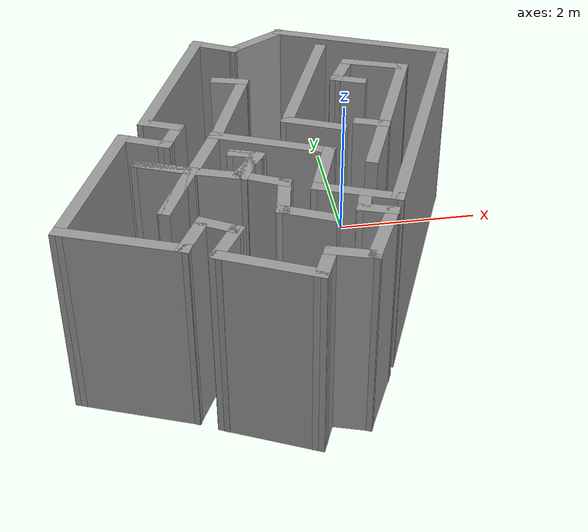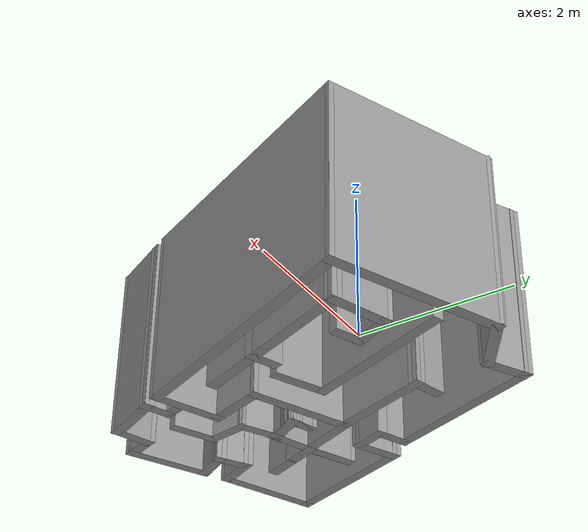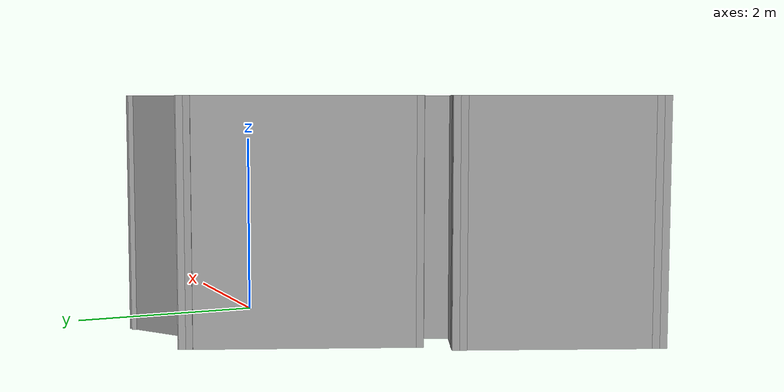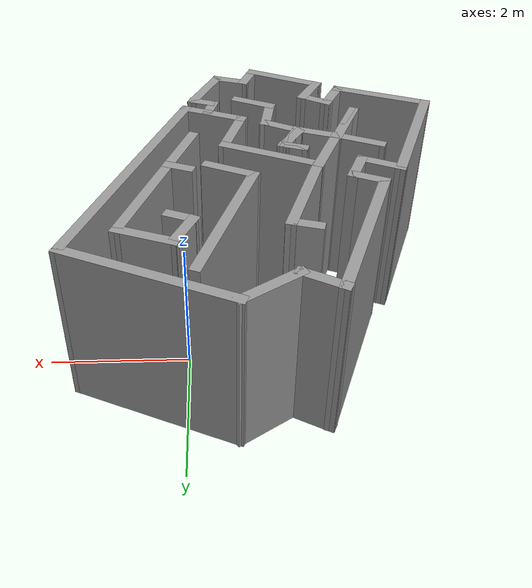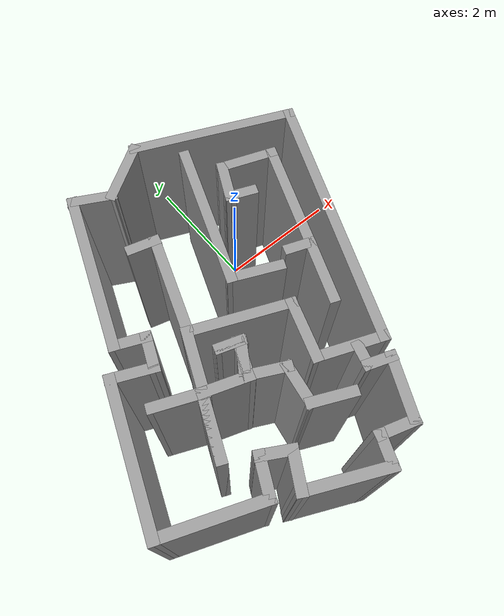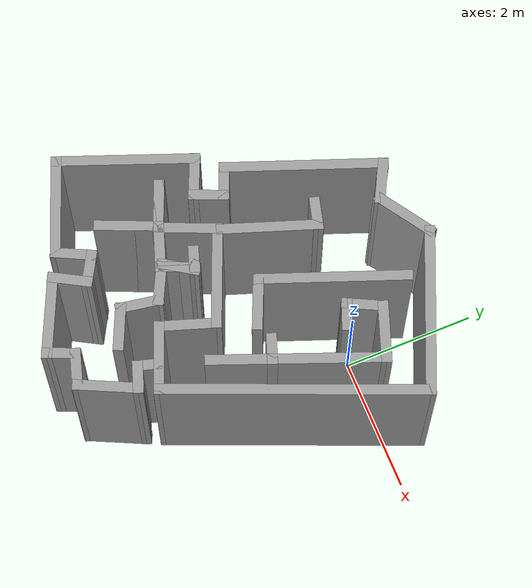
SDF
<?xml version='1.0'?>
<sdf version='1.7'>
  <model name='Arena_ws22_V1'>
    <pose>-1.10906 -1.36389 0 0 -0 0</pose>
    <link name='Wall_1'>
      <collision name='Wall_1_Collision'>
        <geometry>
          <box>
            <size>3.90656 0.15 2.5</size>
          </box>
        </geometry>
        <pose>0 0 1.25 0 -0 0</pose>
      </collision>
      <visual name='Wall_1_Visual'>
        <pose>0 0 1.25 0 -0 0</pose>
        <geometry>
          <box>
            <size>3.90656 0.15 2.5</size>
          </box>
        </geometry>
        <material>
          <script>
            <uri>file://media/materials/scripts/gazebo.material</uri>
            <name>Gazebo/Grey</name>
          </script>
          <ambient>1 1 1 1</ambient>
        </material>
        <meta>
          <layer>0</layer>
        </meta>
      </visual>
      <pose>1.86983 0.150082 0 0 -0 -1.96559</pose>
    </link>
    <link name='Wall_10'>
      <collision name='Wall_10_Collision'>
        <geometry>
          <box>
            <size>0.760816 0.15 2.5</size>
          </box>
        </geometry>
        <pose>0 0 1.25 0 -0 0</pose>
      </collision>
      <visual name='Wall_10_Visual'>
        <pose>0 0 1.25 0 -0 0</pose>
        <geometry>
          <box>
            <size>0.760816 0.15 2.5</size>
          </box>
        </geometry>
        <material>
          <script>
            <uri>file://media/materials/scripts/gazebo.material</uri>
            <name>Gazebo/Grey</name>
          </script>
          <ambient>1 1 1 1</ambient>
        </material>
        <meta>
          <layer>0</layer>
        </meta>
      </visual>
      <pose>-0.814517 -0.800465 0 0 -0 -0.329624</pose>
    </link>
    <link name='Wall_11'>
      <collision name='Wall_11_Collision'>
        <geometry>
          <box>
            <size>0.633342 0.15 2.5</size>
          </box>
        </geometry>
        <pose>0 0 1.25 0 -0 0</pose>
      </collision>
      <visual name='Wall_11_Visual'>
        <pose>0 0 1.25 0 -0 0</pose>
        <geometry>
          <box>
            <size>0.633342 0.15 2.5</size>
          </box>
        </geometry>
        <material>
          <script>
            <uri>file://media/materials/scripts/gazebo.material</uri>
            <name>Gazebo/Grey</name>
          </script>
          <ambient>1 1 1 1</ambient>
        </material>
        <meta>
          <layer>0</layer>
        </meta>
      </visual>
      <pose>-0.426693 -0.678795 0 0 -0 1.14938</pose>
    </link>
    <link name='Wall_12'>
      <collision name='Wall_12_Collision'>
        <geometry>
          <box>
            <size>0.404945 0.15 2.5</size>
          </box>
        </geometry>
        <pose>0 0 1.25 0 -0 0</pose>
      </collision>
      <visual name='Wall_12_Visual'>
        <pose>0 0 1.25 0 -0 0</pose>
        <geometry>
          <box>
            <size>0.404945 0.15 2.5</size>
          </box>
        </geometry>
        <material>
          <script>
            <uri>file://media/materials/scripts/gazebo.material</uri>
            <name>Gazebo/Grey</name>
          </script>
          <ambient>1 1 1 1</ambient>
        </material>
        <meta>
          <layer>0</layer>
        </meta>
      </visual>
      <pose>-0.449507 -0.420246 0 0 -0 2.83871</pose>
    </link>
    <link name='Wall_13'>
      <collision name='Wall_13_Collision'>
        <geometry>
          <box>
            <size>0.438566 0.15 2.5</size>
          </box>
        </geometry>
        <pose>0 0 1.25 0 -0 0</pose>
      </collision>
      <visual name='Wall_13_Visual'>
        <pose>0 0 1.25 0 -0 0</pose>
        <geometry>
          <box>
            <size>0.438566 0.15 2.5</size>
          </box>
        </geometry>
        <material>
          <script>
            <uri>file://media/materials/scripts/gazebo.material</uri>
            <name>Gazebo/Grey</name>
          </script>
          <ambient>1 1 1 1</ambient>
        </material>
        <meta>
          <layer>0</layer>
        </meta>
      </visual>
      <pose>-0.434298 -0.42785 0 0 -0 -0.321751</pose>
    </link>
    <link name='Wall_14'>
      <collision name='Wall_14_Collision'>
        <geometry>
          <box>
            <size>0.622451 0.15 2.5</size>
          </box>
        </geometry>
        <pose>0 0 1.25 0 -0 0</pose>
      </collision>
      <visual name='Wall_14_Visual'>
        <pose>0 0 1.25 0 -0 0</pose>
        <geometry>
          <box>
            <size>0.622451 0.15 2.5</size>
          </box>
        </geometry>
        <material>
          <script>
            <uri>file://media/materials/scripts/gazebo.material</uri>
            <name>Gazebo/Grey</name>
          </script>
          <ambient>1 1 1 1</ambient>
        </material>
        <meta>
          <layer>0</layer>
        </meta>
      </visual>
      <pose>-0.426693 -0.671191 0 0 -0 -2.14987</pose>
    </link>
    <link name='Wall_15'>
      <collision name='Wall_15_Collision'>
        <geometry>
          <box>
            <size>0.694125 0.15 2.5</size>
          </box>
        </geometry>
        <pose>0 0 1.25 0 -0 0</pose>
      </collision>
      <visual name='Wall_15_Visual'>
        <pose>0 0 1.25 0 -0 0</pose>
        <geometry>
          <box>
            <size>0.694125 0.15 2.5</size>
          </box>
        </geometry>
        <material>
          <script>
            <uri>file://media/materials/scripts/gazebo.material</uri>
            <name>Gazebo/Grey</name>
          </script>
          <ambient>1 1 1 1</ambient>
        </material>
        <meta>
          <layer>0</layer>
        </meta>
      </visual>
      <pose>-0.312628 -0.990574 0 0 -0 -0.463648</pose>
    </link>
    <link name='Wall_16'>
      <collision name='Wall_16_Collision'>
        <geometry>
          <box>
            <size>0.690071 0.15 2.5</size>
          </box>
        </geometry>
        <pose>0 0 1.25 0 -0 0</pose>
      </collision>
      <visual name='Wall_16_Visual'>
        <pose>0 0 1.25 0 -0 0</pose>
        <geometry>
          <box>
            <size>0.690071 0.15 2.5</size>
          </box>
        </geometry>
        <material>
          <script>
            <uri>file://media/materials/scripts/gazebo.material</uri>
            <name>Gazebo/Grey</name>
          </script>
          <ambient>1 1 1 1</ambient>
        </material>
        <meta>
          <layer>0</layer>
        </meta>
      </visual>
      <pose>-0.114914 -1.3784 0 0 -0 -1.74057</pose>
    </link>
    <link name='Wall_17'>
      <collision name='Wall_17_Collision'>
        <geometry>
          <box>
            <size>0.701304 0.15 2.5</size>
          </box>
        </geometry>
        <pose>0 0 1.25 0 -0 0</pose>
      </collision>
      <visual name='Wall_17_Visual'>
        <pose>0 0 1.25 0 -0 0</pose>
        <geometry>
          <box>
            <size>0.701304 0.15 2.5</size>
          </box>
        </geometry>
        <material>
          <script>
            <uri>file://media/materials/scripts/gazebo.material</uri>
            <name>Gazebo/Grey</name>
          </script>
          <ambient>1 1 1 1</ambient>
        </material>
        <meta>
          <layer>0</layer>
        </meta>
      </visual>
      <pose>0.090404 -1.75862 0 0 -0 -0.426628</pose>
    </link>
    <link name='Wall_2'>
      <collision name='Wall_2_Collision'>
        <geometry>
          <box>
            <size>1.06506 0.15 2.5</size>
          </box>
        </geometry>
        <pose>0 0 1.25 0 -0 0</pose>
      </collision>
      <visual name='Wall_2_Visual'>
        <pose>0 0 1.25 0 -0 0</pose>
        <geometry>
          <box>
            <size>1.06506 0.15 2.5</size>
          </box>
        </geometry>
        <material>
          <script>
            <uri>file://media/materials/scripts/gazebo.material</uri>
            <name>Gazebo/Grey</name>
          </script>
          <ambient>1 1 1 1</ambient>
        </material>
        <meta>
          <layer>0</layer>
        </meta>
      </visual>
      <pose>0.721567 -1.41642 0 0 -0 2.76726</pose>
    </link>
    <link name='Wall_20'>
      <collision name='Wall_20_Collision'>
        <geometry>
          <box>
            <size>2.52047 0.15 2.5</size>
          </box>
        </geometry>
        <pose>0 0 1.25 0 -0 0</pose>
      </collision>
      <visual name='Wall_20_Visual'>
        <pose>0 0 1.25 0 -0 0</pose>
        <geometry>
          <box>
            <size>2.52047 0.15 2.5</size>
          </box>
        </geometry>
        <material>
          <script>
            <uri>file://media/materials/scripts/gazebo.material</uri>
            <name>Gazebo/Grey</name>
          </script>
          <ambient>1 1 1 1</ambient>
        </material>
        <meta>
          <layer>0</layer>
        </meta>
      </visual>
      <pose>1.50482 2.35535 0 0 -0 2.73249</pose>
    </link>
    <link name='Wall_21'>
      <collision name='Wall_21_Collision'>
        <geometry>
          <box>
            <size>0.998016 0.15 2.5</size>
          </box>
        </geometry>
        <pose>0 0 1.25 0 -0 0</pose>
      </collision>
      <visual name='Wall_21_Visual'>
        <pose>0 0 1.25 0 -0 0</pose>
        <geometry>
          <box>
            <size>0.998016 0.15 2.5</size>
          </box>
        </geometry>
        <material>
          <script>
            <uri>file://media/materials/scripts/gazebo.material</uri>
            <name>Gazebo/Grey</name>
          </script>
          <ambient>1 1 1 1</ambient>
        </material>
        <meta>
          <layer>0</layer>
        </meta>
      </visual>
      <pose>0.059987 2.59869 0 0 -0 -2.57349</pose>
    </link>
    <link name='Wall_22'>
      <collision name='Wall_22_Collision'>
        <geometry>
          <box>
            <size>0.701094 0.15 2.5</size>
          </box>
        </geometry>
        <pose>0 0 1.25 0 -0 0</pose>
      </collision>
      <visual name='Wall_22_Visual'>
        <pose>0 0 1.25 0 -0 0</pose>
        <geometry>
          <box>
            <size>0.701094 0.15 2.5</size>
          </box>
        </geometry>
        <material>
          <script>
            <uri>file://media/materials/scripts/gazebo.material</uri>
            <name>Gazebo/Grey</name>
          </script>
          <ambient>1 1 1 1</ambient>
        </material>
        <meta>
          <layer>0</layer>
        </meta>
      </visual>
      <pose>-0.540759 2.49983 0 0 -0 2.65326</pose>
    </link>
    <link name='Wall_23'>
      <collision name='Wall_23_Collision'>
        <geometry>
          <box>
            <size>2.4267 0.15 2.5</size>
          </box>
        </geometry>
        <pose>0 0 1.25 0 -0 0</pose>
      </collision>
      <visual name='Wall_23_Visual'>
        <pose>0 0 1.25 0 -0 0</pose>
        <geometry>
          <box>
            <size>2.4267 0.15 2.5</size>
          </box>
        </geometry>
        <material>
          <script>
            <uri>file://media/materials/scripts/gazebo.material</uri>
            <name>Gazebo/Grey</name>
          </script>
          <ambient>1 1 1 1</ambient>
        </material>
        <meta>
          <layer>0</layer>
        </meta>
      </visual>
      <pose>-1.18713 1.5645 0 0 -0 -1.93269</pose>
    </link>
    <link name='Wall_24'>
      <collision name='Wall_24_Collision'>
        <geometry>
          <box>
            <size>0.579361 0.15 2.5</size>
          </box>
        </geometry>
        <pose>0 0 1.25 0 -0 0</pose>
      </collision>
      <visual name='Wall_24_Visual'>
        <pose>0 0 1.25 0 -0 0</pose>
        <geometry>
          <box>
            <size>0.579361 0.15 2.5</size>
          </box>
        </geometry>
        <material>
          <script>
            <uri>file://media/materials/scripts/gazebo.material</uri>
            <name>Gazebo/Grey</name>
          </script>
          <ambient>1 1 1 1</ambient>
        </material>
        <meta>
          <layer>0</layer>
        </meta>
      </visual>
      <pose>-1.39245 0.416235 0 0 -0 -0.400241</pose>
    </link>
    <link name='Wall_25'>
      <collision name='Wall_25_Collision'>
        <geometry>
          <box>
            <size>0.579361 0.15 2.5</size>
          </box>
        </geometry>
        <pose>0 0 1.25 0 -0 0</pose>
      </collision>
      <visual name='Wall_25_Visual'>
        <pose>0 0 1.25 0 -0 0</pose>
        <geometry>
          <box>
            <size>0.579361 0.15 2.5</size>
          </box>
        </geometry>
        <material>
          <script>
            <uri>file://media/materials/scripts/gazebo.material</uri>
            <name>Gazebo/Grey</name>
          </script>
          <ambient>1 1 1 1</ambient>
        </material>
        <meta>
          <layer>0</layer>
        </meta>
      </visual>
      <pose>-1.27838 0.134873 0 0 -0 -1.97104</pose>
    </link>
    <link name='Wall_26'>
      <collision name='Wall_26_Collision'>
        <geometry>
          <box>
            <size>0.715185 0.15 2.5</size>
          </box>
        </geometry>
        <pose>0 0 1.25 0 -0 0</pose>
      </collision>
      <visual name='Wall_26_Visual'>
        <pose>0 0 1.25 0 -0 0</pose>
        <geometry>
          <box>
            <size>0.715185 0.15 2.5</size>
          </box>
        </geometry>
        <material>
          <script>
            <uri>file://media/materials/scripts/gazebo.material</uri>
            <name>Gazebo/Grey</name>
          </script>
          <ambient>1 1 1 1</ambient>
        </material>
        <meta>
          <layer>0</layer>
        </meta>
      </visual>
      <pose>-1.62058 0.051225 0 0 -0 2.7261</pose>
    </link>
    <link name='Wall_27'>
      <collision name='Wall_27_Collision'>
        <geometry>
          <box>
            <size>2.1384 0.15 2.5</size>
          </box>
        </geometry>
        <pose>0 0 1.25 0 -0 0</pose>
      </collision>
      <visual name='Wall_27_Visual'>
        <pose>0 0 1.25 0 -0 0</pose>
        <geometry>
          <box>
            <size>2.1384 0.15 2.5</size>
          </box>
        </geometry>
        <material>
          <script>
            <uri>file://media/materials/scripts/gazebo.material</uri>
            <name>Gazebo/Grey</name>
          </script>
          <ambient>1 1 1 1</ambient>
        </material>
        <meta>
          <layer>0</layer>
        </meta>
      </visual>
      <pose>-2.23653 -0.762443 0 0 -0 -1.93852</pose>
    </link>
    <link name='Wall_28'>
      <collision name='Wall_28_Collision'>
        <geometry>
          <box>
            <size>1.55094 0.15 2.5</size>
          </box>
        </geometry>
        <pose>0 0 1.25 0 -0 0</pose>
      </collision>
      <visual name='Wall_28_Visual'>
        <pose>0 0 1.25 0 -0 0</pose>
        <geometry>
          <box>
            <size>1.55094 0.15 2.5</size>
          </box>
        </geometry>
        <material>
          <script>
            <uri>file://media/materials/scripts/gazebo.material</uri>
            <name>Gazebo/Grey</name>
          </script>
          <ambient>1 1 1 1</ambient>
        </material>
        <meta>
          <layer>0</layer>
        </meta>
      </visual>
      <pose>-1.93996 -1.94112 0 0 -0 -0.366394</pose>
    </link>
    <link name='Wall_29'>
      <collision name='Wall_29_Collision'>
        <geometry>
          <box>
            <size>0.660117 0.15 2.5</size>
          </box>
        </geometry>
        <pose>0 0 1.25 0 -0 0</pose>
      </collision>
      <visual name='Wall_29_Visual'>
        <pose>0 0 1.25 0 -0 0</pose>
        <geometry>
          <box>
            <size>0.660117 0.15 2.5</size>
          </box>
        </geometry>
        <material>
          <script>
            <uri>file://media/materials/scripts/gazebo.material</uri>
            <name>Gazebo/Grey</name>
          </script>
          <ambient>1 1 1 1</ambient>
        </material>
        <meta>
          <layer>0</layer>
        </meta>
      </visual>
      <pose>-1.17192 -1.96393 0 0 -0 1.10715</pose>
    </link>
    <link name='Wall_3'>
      <collision name='Wall_3_Collision'>
        <geometry>
          <box>
            <size>0.953189 0.15 2.5</size>
          </box>
        </geometry>
        <pose>0 0 1.25 0 -0 0</pose>
      </collision>
      <visual name='Wall_3_Visual'>
        <pose>0 0 1.25 0 -0 0</pose>
        <geometry>
          <box>
            <size>0.953189 0.15 2.5</size>
          </box>
        </geometry>
        <material>
          <script>
            <uri>file://media/materials/scripts/gazebo.material</uri>
            <name>Gazebo/Grey</name>
          </script>
          <ambient>1 1 1 1</ambient>
        </material>
        <meta>
          <layer>0</layer>
        </meta>
      </visual>
      <pose>0.424996 -0.868904 0 0 -0 1.24306</pose>
    </link>
    <link name='Wall_30'>
      <collision name='Wall_30_Collision'>
        <geometry>
          <box>
            <size>0.55181 0.15 2.5</size>
          </box>
        </geometry>
        <pose>0 0 1.25 0 -0 0</pose>
      </collision>
      <visual name='Wall_30_Visual'>
        <pose>0 0 1.25 0 -0 0</pose>
        <geometry>
          <box>
            <size>0.55181 0.15 2.5</size>
          </box>
        </geometry>
        <material>
          <script>
            <uri>file://media/materials/scripts/gazebo.material</uri>
            <name>Gazebo/Grey</name>
          </script>
          <ambient>1 1 1 1</ambient>
        </material>
        <meta>
          <layer>0</layer>
        </meta>
      </visual>
      <pose>-0.882956 -1.83466 0 0 -0 -0.514451</pose>
    </link>
    <link name='Wall_31'>
      <collision name='Wall_31_Collision'>
        <geometry>
          <box>
            <size>0.640467 0.15 2.5</size>
          </box>
        </geometry>
        <pose>0 0 1.25 0 -0 0</pose>
      </collision>
      <visual name='Wall_31_Visual'>
        <pose>0 0 1.25 0 -0 0</pose>
        <geometry>
          <box>
            <size>0.640467 0.15 2.5</size>
          </box>
        </geometry>
        <material>
          <script>
            <uri>file://media/materials/scripts/gazebo.material</uri>
            <name>Gazebo/Grey</name>
          </script>
          <ambient>1 1 1 1</ambient>
        </material>
        <meta>
          <layer>0</layer>
        </meta>
      </visual>
      <pose>-0.829725 -2.14644 0 0 -0 -2.08994</pose>
    </link>
    <link name='Wall_32'>
      <collision name='Wall_32_Collision'>
        <geometry>
          <box>
            <size>1.27277 0.15 2.5</size>
          </box>
        </geometry>
        <pose>0 0 1.25 0 -0 0</pose>
      </collision>
      <visual name='Wall_32_Visual'>
        <pose>0 0 1.25 0 -0 0</pose>
        <geometry>
          <box>
            <size>1.27277 0.15 2.5</size>
          </box>
        </geometry>
        <material>
          <script>
            <uri>file://media/materials/scripts/gazebo.material</uri>
            <name>Gazebo/Grey</name>
          </script>
          <ambient>1 1 1 1</ambient>
        </material>
        <meta>
          <layer>0</layer>
        </meta>
      </visual>
      <pose>-0.441902 -2.5951 0 0 -0 -0.433354</pose>
    </link>
    <link name='Wall_33'>
      <collision name='Wall_33_Collision'>
        <geometry>
          <box>
            <size>0.545427 0.15 2.5</size>
          </box>
        </geometry>
        <pose>0 0 1.25 0 -0 0</pose>
      </collision>
      <visual name='Wall_33_Visual'>
        <pose>0 0 1.25 0 -0 0</pose>
        <geometry>
          <box>
            <size>0.545427 0.15 2.5</size>
          </box>
        </geometry>
        <material>
          <script>
            <uri>file://media/materials/scripts/gazebo.material</uri>
            <name>Gazebo/Grey</name>
          </script>
          <ambient>1 1 1 1</ambient>
        </material>
        <meta>
          <layer>0</layer>
        </meta>
      </visual>
      <pose>0.143635 -2.64833 0 0 -0 1.176</pose>
    </link>
    <link name='Wall_34'>
      <collision name='Wall_34_Collision'>
        <geometry>
          <box>
            <size>0.611805 0.15 2.5</size>
          </box>
        </geometry>
        <pose>0 0 1.25 0 -0 0</pose>
      </collision>
      <visual name='Wall_34_Visual'>
        <pose>0 0 1.25 0 -0 0</pose>
        <geometry>
          <box>
            <size>0.611805 0.15 2.5</size>
          </box>
        </geometry>
        <material>
          <script>
            <uri>file://media/materials/scripts/gazebo.material</uri>
            <name>Gazebo/Grey</name>
          </script>
          <ambient>1 1 1 1</ambient>
        </material>
        <meta>
          <layer>0</layer>
        </meta>
      </visual>
      <pose>0.440205 -2.53426 0 0 -0 -0.30092</pose>
    </link>
    <link name='Wall_35'>
      <collision name='Wall_35_Collision'>
        <geometry>
          <box>
            <size>0.993503 0.15 2.5</size>
          </box>
        </geometry>
        <pose>0 0 1.25 0 -0 0</pose>
      </collision>
      <visual name='Wall_35_Visual'>
        <pose>0 0 1.25 0 -0 0</pose>
        <geometry>
          <box>
            <size>0.993503 0.15 2.5</size>
          </box>
        </geometry>
        <material>
          <script>
            <uri>file://media/materials/scripts/gazebo.material</uri>
            <name>Gazebo/Grey</name>
          </script>
          <ambient>1 1 1 1</ambient>
        </material>
        <meta>
          <layer>0</layer>
        </meta>
      </visual>
      <pose>0.843237 -2.22248 0 0 -0 1.12328</pose>
    </link>
    <link name='Wall_36'>
      <collision name='Wall_36_Collision'>
        <geometry>
          <box>
            <size>0.472268 0.15 2.5</size>
          </box>
        </geometry>
        <pose>0 0 1.25 0 -0 0</pose>
      </collision>
      <visual name='Wall_36_Visual'>
        <pose>0 0 1.25 0 -0 0</pose>
        <geometry>
          <box>
            <size>0.472268 0.15 2.5</size>
          </box>
        </geometry>
        <material>
          <script>
            <uri>file://media/materials/scripts/gazebo.material</uri>
            <name>Gazebo/Grey</name>
          </script>
          <ambient>1 1 1 1</ambient>
        </material>
        <meta>
          <layer>0</layer>
        </meta>
      </visual>
      <pose>0.873655 -1.78903 0 0 -0 2.80492</pose>
    </link>
    <link name='Wall_37'>
      <collision name='Wall_37_Collision'>
        <geometry>
          <box>
            <size>0.4195 0.15 2.5</size>
          </box>
        </geometry>
        <pose>0 0 1.25 0 -0 0</pose>
      </collision>
      <visual name='Wall_37_Visual'>
        <pose>0 0 1.25 0 -0 0</pose>
        <geometry>
          <box>
            <size>0.4195 0.15 2.5</size>
          </box>
        </geometry>
        <material>
          <script>
            <uri>file://media/materials/scripts/gazebo.material</uri>
            <name>Gazebo/Grey</name>
          </script>
          <ambient>1 1 1 1</ambient>
        </material>
        <meta>
          <layer>0</layer>
        </meta>
      </visual>
      <pose>0.759589 -1.60653 0 0 -0 1.28475</pose>
    </link>
    <link name='Wall_4'>
      <collision name='Wall_4_Collision'>
        <geometry>
          <box>
            <size>1.56793 0.15 2.5</size>
          </box>
        </geometry>
        <pose>0 0 1.25 0 -0 0</pose>
      </collision>
      <visual name='Wall_4_Visual'>
        <pose>0 0 1.25 0 -0 0</pose>
        <geometry>
          <box>
            <size>1.56793 0.15 2.5</size>
          </box>
        </geometry>
        <material>
          <script>
            <uri>file://media/materials/scripts/gazebo.material</uri>
            <name>Gazebo/Grey</name>
          </script>
          <ambient>1 1 1 1</ambient>
        </material>
        <meta>
          <layer>0</layer>
        </meta>
      </visual>
      <pose>-0.099705 -0.214928 0 0 -0 2.74515</pose>
    </link>
    <link name='Wall_40'>
      <collision name='Wall_40_Collision'>
        <geometry>
          <box>
            <size>2.60144 0.15 2.5</size>
          </box>
        </geometry>
        <pose>0 0 1.25 0 -0 0</pose>
      </collision>
      <visual name='Wall_40_Visual'>
        <pose>0 0 1.25 0 -0 0</pose>
        <geometry>
          <box>
            <size>2.60144 0.15 2.5</size>
          </box>
        </geometry>
        <material>
          <script>
            <uri>file://media/materials/scripts/gazebo.material</uri>
            <name>Gazebo/Grey</name>
          </script>
          <ambient>1 1 1 1</ambient>
        </material>
        <meta>
          <layer>0</layer>
        </meta>
      </visual>
      <pose>1.4744 0.363004 0 0 -0 1.19605</pose>
    </link>
    <link name='Wall_41'>
      <collision name='Wall_41_Collision'>
        <geometry>
          <box>
            <size>0.910133 0.15 2.5</size>
          </box>
        </geometry>
        <pose>0 0 1.25 0 -0 0</pose>
      </collision>
      <visual name='Wall_41_Visual'>
        <pose>0 0 1.25 0 -0 0</pose>
        <geometry>
          <box>
            <size>0.910133 0.15 2.5</size>
          </box>
        </geometry>
        <material>
          <script>
            <uri>file://media/materials/scripts/gazebo.material</uri>
            <name>Gazebo/Grey</name>
          </script>
          <ambient>1 1 1 1</ambient>
        </material>
        <meta>
          <layer>0</layer>
        </meta>
      </visual>
      <pose>1.56565 1.63294 0 0 -0 2.79453</pose>
    </link>
    <link name='Wall_42'>
      <collision name='Wall_42_Collision'>
        <geometry>
          <box>
            <size>0.660117 0.15 2.5</size>
          </box>
        </geometry>
        <pose>0 0 1.25 0 -0 0</pose>
      </collision>
      <visual name='Wall_42_Visual'>
        <pose>0 0 1.25 0 -0 0</pose>
        <geometry>
          <box>
            <size>0.660117 0.15 2.5</size>
          </box>
        </geometry>
        <material>
          <script>
            <uri>file://media/materials/scripts/gazebo.material</uri>
            <name>Gazebo/Grey</name>
          </script>
          <ambient>1 1 1 1</ambient>
        </material>
        <meta>
          <layer>0</layer>
        </meta>
      </visual>
      <pose>1.09418 1.53408 0 0 -0 -2.03444</pose>
    </link>
    <link name='Wall_43'>
      <collision name='Wall_43_Collision'>
        <geometry>
          <box>
            <size>0.477607 0.15 2.5</size>
          </box>
        </geometry>
        <pose>0 0 1.25 0 -0 0</pose>
      </collision>
      <visual name='Wall_43_Visual'>
        <pose>0 0 1.25 0 -0 0</pose>
        <geometry>
          <box>
            <size>0.477607 0.15 2.5</size>
          </box>
        </geometry>
        <material>
          <script>
            <uri>file://media/materials/scripts/gazebo.material</uri>
            <name>Gazebo/Grey</name>
          </script>
          <ambient>1 1 1 1</ambient>
        </material>
        <meta>
          <layer>0</layer>
        </meta>
      </visual>
      <pose>1.1322 1.24511 0 0 -0 -0.380506</pose>
    </link>
    <link name='Wall_45'>
      <collision name='Wall_45_Collision'>
        <geometry>
          <box>
            <size>0.457954 0.15 2.5</size>
          </box>
        </geometry>
        <pose>0 0 1.25 0 -0 0</pose>
      </collision>
      <visual name='Wall_45_Visual'>
        <pose>0 0 1.25 0 -0 0</pose>
        <geometry>
          <box>
            <size>0.457954 0.15 2.5</size>
          </box>
        </geometry>
        <material>
          <script>
            <uri>file://media/materials/scripts/gazebo.material</uri>
            <name>Gazebo/Grey</name>
          </script>
          <ambient>1 1 1 1</ambient>
        </material>
        <meta>
          <layer>0</layer>
        </meta>
      </visual>
      <pose>1.20064 0.081643 0 0 -0 -0.35299</pose>
    </link>
    <link name='Wall_47'>
      <collision name='Wall_47_Collision'>
        <geometry>
          <box>
            <size>2.2487 0.15 2.5</size>
          </box>
        </geometry>
        <pose>0 0 1.25 0 -0 0</pose>
      </collision>
      <visual name='Wall_47_Visual'>
        <pose>0 0 1.25 0 -0 0</pose>
        <geometry>
          <box>
            <size>2.2487 0.15 2.5</size>
          </box>
        </geometry>
        <material>
          <script>
            <uri>file://media/materials/scripts/gazebo.material</uri>
            <name>Gazebo/Grey</name>
          </script>
          <ambient>1 1 1 1</ambient>
        </material>
        <meta>
          <layer>0</layer>
        </meta>
      </visual>
      <pose>0.546667 1.28313 0 0 -0 -1.93381</pose>
    </link>
    <link name='Wall_48'>
      <collision name='Wall_48_Collision'>
        <geometry>
          <box>
            <size>0.831006 0.15 2.5</size>
          </box>
        </geometry>
        <pose>0 0 1.25 0 -0 0</pose>
      </collision>
      <visual name='Wall_48_Visual'>
        <pose>0 0 1.25 0 -0 0</pose>
        <geometry>
          <box>
            <size>0.831006 0.15 2.5</size>
          </box>
        </geometry>
        <material>
          <script>
            <uri>file://media/materials/scripts/gazebo.material</uri>
            <name>Gazebo/Grey</name>
          </script>
          <ambient>1 1 1 1</ambient>
        </material>
        <meta>
          <layer>0</layer>
        </meta>
      </visual>
      <pose>0.485831 0.165291 0 0 -0 -0.413689</pose>
    </link>
    <link name='Wall_5'>
      <collision name='Wall_5_Collision'>
        <geometry>
          <box>
            <size>0.994736 0.15 2.5</size>
          </box>
        </geometry>
        <pose>0 0 1.25 0 -0 0</pose>
      </collision>
      <visual name='Wall_5_Visual'>
        <pose>0 0 1.25 0 -0 0</pose>
        <geometry>
          <box>
            <size>0.994736 0.15 2.5</size>
          </box>
        </geometry>
        <material>
          <script>
            <uri>file://media/materials/scripts/gazebo.material</uri>
            <name>Gazebo/Grey</name>
          </script>
          <ambient>1 1 1 1</ambient>
        </material>
        <meta>
          <layer>0</layer>
        </meta>
      </visual>
      <pose>-0.920978 -0.328994 0 0 -0 -1.97805</pose>
    </link>
    <link name='Wall_50'>
      <collision name='Wall_50_Collision'>
        <geometry>
          <box>
            <size>0.496813 0.15 2.5</size>
          </box>
        </geometry>
        <pose>0 0 1.25 0 -0 0</pose>
      </collision>
      <visual name='Wall_50_Visual'>
        <pose>0 0 1.25 0 -0 0</pose>
        <geometry>
          <box>
            <size>0.496813 0.15 2.5</size>
          </box>
        </geometry>
        <material>
          <script>
            <uri>file://media/materials/scripts/gazebo.material</uri>
            <name>Gazebo/Grey</name>
          </script>
          <ambient>1 1 1 1</ambient>
        </material>
        <meta>
          <layer>0</layer>
        </meta>
      </visual>
      <pose>-0.434298 1.44283 0 0 -0 -0.266252</pose>
    </link>
    <link name='Wall_51'>
      <collision name='Wall_51_Collision'>
        <geometry>
          <box>
            <size>1.5209 0.15 2.5</size>
          </box>
        </geometry>
        <pose>0 0 1.25 0 -0 0</pose>
      </collision>
      <visual name='Wall_51_Visual'>
        <pose>0 0 1.25 0 -0 0</pose>
        <geometry>
          <box>
            <size>1.5209 0.15 2.5</size>
          </box>
        </geometry>
        <material>
          <script>
            <uri>file://media/materials/scripts/gazebo.material</uri>
            <name>Gazebo/Grey</name>
          </script>
          <ambient>1 1 1 1</ambient>
        </material>
        <meta>
          <layer>0</layer>
        </meta>
      </visual>
      <pose>-0.495133 0.750828 0 0 -0 -1.91009</pose>
    </link>
    <link name='Wall_6'>
      <collision name='Wall_6_Collision'>
        <geometry>
          <box>
            <size>0.811012 0.15 2.5</size>
          </box>
        </geometry>
        <pose>0 0 1.25 0 -0 0</pose>
      </collision>
      <visual name='Wall_6_Visual'>
        <pose>0 0 1.25 0 -0 0</pose>
        <geometry>
          <box>
            <size>0.811012 0.15 2.5</size>
          </box>
        </geometry>
        <material>
          <script>
            <uri>file://media/materials/scripts/gazebo.material</uri>
            <name>Gazebo/Grey</name>
          </script>
          <ambient>1 1 1 1</ambient>
        </material>
        <meta>
          <layer>0</layer>
        </meta>
      </visual>
      <pose>-1.39245 -0.587542 0 0 -0 2.73972</pose>
    </link>
    <link name='Wall_7'>
      <collision name='Wall_7_Collision'>
        <geometry>
          <box>
            <size>0.791117 0.15 2.5</size>
          </box>
        </geometry>
        <pose>0 0 1.25 0 -0 0</pose>
      </collision>
      <visual name='Wall_7_Visual'>
        <pose>0 0 1.25 0 -0 0</pose>
        <geometry>
          <box>
            <size>0.791117 0.15 2.5</size>
          </box>
        </geometry>
        <material>
          <script>
            <uri>file://media/materials/scripts/gazebo.material</uri>
            <name>Gazebo/Grey</name>
          </script>
          <ambient>1 1 1 1</ambient>
        </material>
        <meta>
          <layer>0</layer>
        </meta>
      </visual>
      <pose>-1.40005 -0.579938 0 0 -0 -0.389317</pose>
    </link>
    <link name='Wall_8'>
      <collision name='Wall_8_Collision'>
        <geometry>
          <box>
            <size>0.994736 0.15 2.5</size>
          </box>
        </geometry>
        <pose>0 0 1.25 0 -0 0</pose>
      </collision>
      <visual name='Wall_8_Visual'>
        <pose>0 0 1.25 0 -0 0</pose>
        <geometry>
          <box>
            <size>0.994736 0.15 2.5</size>
          </box>
        </geometry>
        <material>
          <script>
            <uri>file://media/materials/scripts/gazebo.material</uri>
            <name>Gazebo/Grey</name>
          </script>
          <ambient>1 1 1 1</ambient>
        </material>
        <meta>
          <layer>0</layer>
        </meta>
      </visual>
      <pose>-1.27078 -1.08943 0 0 -0 -1.97805</pose>
    </link>
    <link name='Wall_9'>
      <collision name='Wall_9_Collision'>
        <geometry>
          <box>
            <size>0.994736 0.15 2.5</size>
          </box>
        </geometry>
        <pose>0 0 1.25 0 -0 0</pose>
      </collision>
      <visual name='Wall_9_Visual'>
        <pose>0 0 1.25 0 -0 0</pose>
        <geometry>
          <box>
            <size>0.994736 0.15 2.5</size>
          </box>
        </geometry>
        <material>
          <script>
            <uri>file://media/materials/scripts/gazebo.material</uri>
            <name>Gazebo/Grey</name>
          </script>
          <ambient>1 1 1 1</ambient>
        </material>
        <meta>
          <layer>0</layer>
        </meta>
      </visual>
      <pose>-1.27078 -1.08943 0 0 -0 1.16354</pose>
    </link>
    <static>1</static>
  </model>
</sdf>
